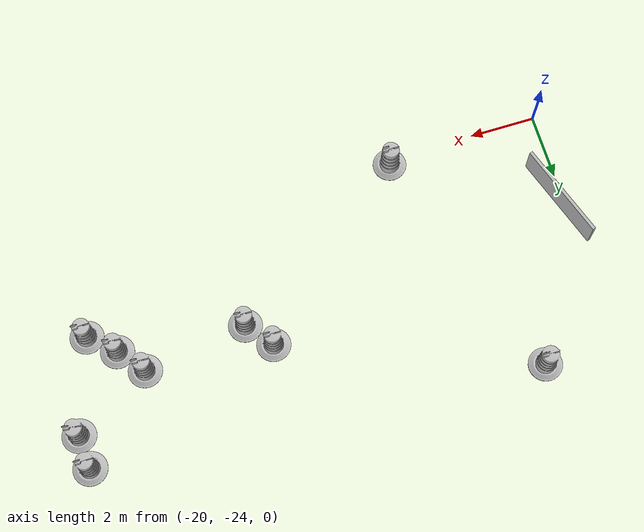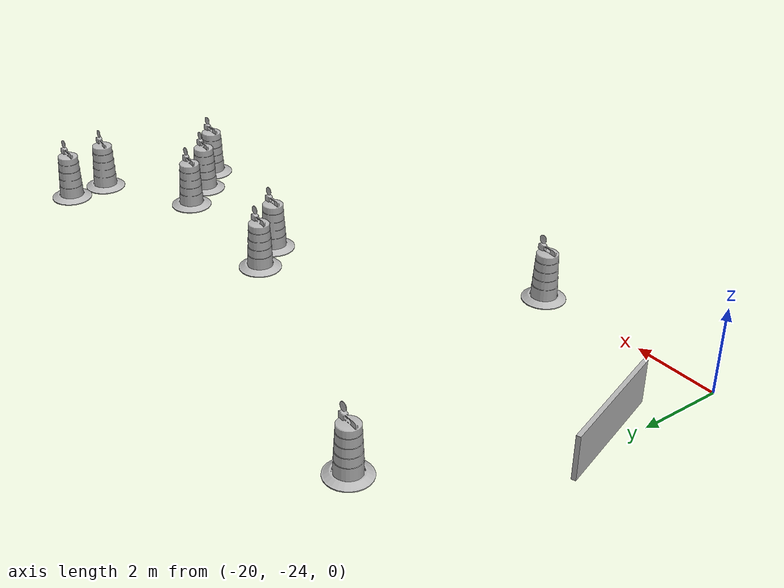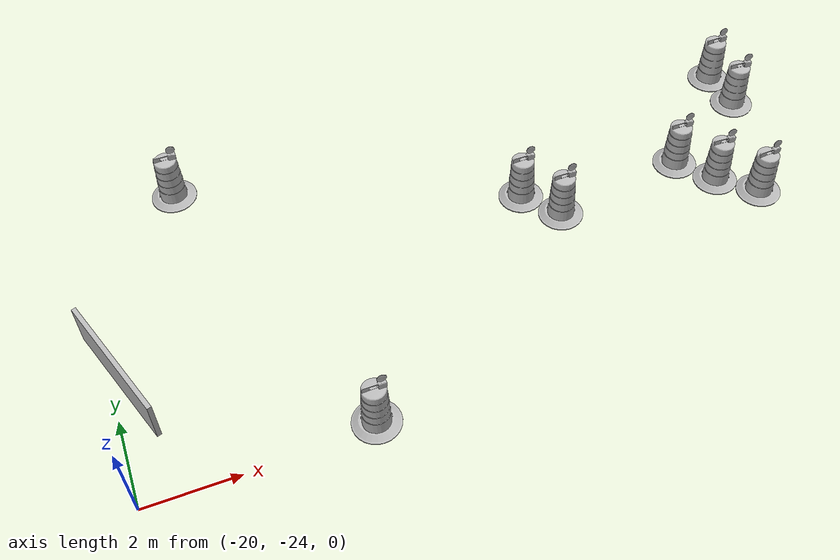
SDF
<sdf version="1.7">
 <world name="default">
  <model name="Construction Barrel_1">
   <link name="link">
    <inertial>
     <pose>0 0 0.4 0 -0 0</pose>
     <mass>500</mass>
     <inertia><ixx>51.2096</ixx><iyy>51.2096</iyy><izz>25</izz><ixy>0</ixy><ixz>0</ixz><iyz>0</iyz></inertia>
    </inertial>
    <collision name="collision">
     <geometry><mesh><uri>model://construction_barrel/meshes/construction_barrel.dae</uri></mesh></geometry>
    </collision>
    <visual name="visual">
     <geometry><mesh><uri>model://construction_barrel/meshes/construction_barrel.dae</uri></mesh></geometry>
    </visual>
    <velocity_decay><linear>0</linear><angular>0</angular></velocity_decay>
   </link>
   <pose>-17.75 -16.5 0 0 0 -0.003004</pose>
   <static>0</static>
  </model>
  <model name="Construction Barrel_2">
   <link name="link">
    <inertial>
     <pose>0 0 0.4 0 -0 0</pose>
     <mass>500</mass>
     <inertia><ixx>51.2096</ixx><iyy>51.2096</iyy><izz>25</izz><ixy>0</ixy><ixz>0</ixz><iyz>0</iyz></inertia>
    </inertial>
    <collision name="collision">
     <geometry><mesh><uri>model://construction_barrel/meshes/construction_barrel.dae</uri></mesh></geometry>
    </collision>
    <visual name="visual">
     <geometry><mesh><uri>model://construction_barrel/meshes/construction_barrel.dae</uri></mesh></geometry>
    </visual>
    <velocity_decay><linear>0</linear><angular>0</angular></velocity_decay>
   </link>
   <pose>-15.3052 -23.817 -2e-06 4e-06 7e-06 -0.002786</pose>
   <static>0</static>
  </model>
  <model name="Construction Barrel_3">
   <link name="link">
    <inertial>
     <pose>0 0 0.4 0 -0 0</pose>
     <mass>500</mass>
     <inertia><ixx>51.2096</ixx><iyy>51.2096</iyy><izz>25</izz><ixy>0</ixy><ixz>0</ixz><iyz>0</iyz></inertia>
    </inertial>
    <collision name="collision">
     <geometry><mesh><uri>model://construction_barrel/meshes/construction_barrel.dae</uri></mesh></geometry>
    </collision>
    <visual name="visual">
     <geometry><mesh><uri>model://construction_barrel/meshes/construction_barrel.dae</uri></mesh></geometry>
    </visual>
    <velocity_decay><linear>0</linear><angular>0</angular></velocity_decay>
   </link>
   <pose>-10.3295 -19.3691 -0 0 -0 -0.002793</pose>
   <static>0</static>
  </model>
  <model name="Construction Barrel_4">
   <link name="link">
    <inertial>
     <pose>0 0 0.4 0 -0 0</pose>
     <mass>500</mass>
     <inertia><ixx>51.2096</ixx><iyy>51.2096</iyy><izz>25</izz><ixy>0</ixy><ixz>0</ixz><iyz>0</iyz></inertia>
    </inertial>
    <collision name="collision">
     <geometry><mesh><uri>model://construction_barrel/meshes/construction_barrel.dae</uri></mesh></geometry>
    </collision>
    <visual name="visual">
     <geometry><mesh><uri>model://construction_barrel/meshes/construction_barrel.dae</uri></mesh></geometry>
    </visual>
    <velocity_decay><linear>0</linear><angular>0</angular></velocity_decay>
   </link>
   <pose>-9.69477 -20.1747 -0 0 0 -0.002819</pose>
   <static>0</static>
  </model>
  <model name="Construction Barrel_5">
   <link name="link">
    <inertial>
     <pose>0 0 0.4 0 -0 0</pose>
     <mass>500</mass>
     <inertia><ixx>51.2096</ixx><iyy>51.2096</iyy><izz>25</izz><ixy>0</ixy><ixz>0</ixz><iyz>0</iyz></inertia>
    </inertial>
    <collision name="collision">
     <geometry><mesh><uri>model://construction_barrel/meshes/construction_barrel.dae</uri></mesh></geometry>
    </collision>
    <visual name="visual">
     <geometry><mesh><uri>model://construction_barrel/meshes/construction_barrel.dae</uri></mesh></geometry>
    </visual>
    <velocity_decay><linear>0</linear><angular>0</angular></velocity_decay>
   </link>
   <pose>-5.89646 -20.493 -0 0 0 -0.051367</pose>
   <static>0</static>
  </model>
  <model name="Construction Barrel_6">
   <link name="link">
    <inertial>
     <pose>0 0 0.4 0 -0 0</pose>
     <mass>500</mass>
     <inertia><ixx>51.2096</ixx><iyy>51.2096</iyy><izz>25</izz><ixy>0</ixy><ixz>0</ixz><iyz>0</iyz></inertia>
    </inertial>
    <collision name="collision">
     <geometry><mesh><uri>model://construction_barrel/meshes/construction_barrel.dae</uri></mesh></geometry>
    </collision>
    <visual name="visual">
     <geometry><mesh><uri>model://construction_barrel/meshes/construction_barrel.dae</uri></mesh></geometry>
    </visual>
    <velocity_decay><linear>0</linear><angular>0</angular></velocity_decay>
   </link>
   <pose>-5.14689 -21.1796 -2e-06 0 7e-06 0.05003</pose>
   <static>0</static>
  </model>
  <model name="Construction Barrel_7">
   <link name="link">
    <inertial>
     <pose>0 0 0.4 0 -0 0</pose>
     <mass>500</mass>
     <inertia><ixx>51.2096</ixx><iyy>51.2096</iyy><izz>25</izz><ixy>0</ixy><ixz>0</ixz><iyz>0</iyz></inertia>
    </inertial>
    <collision name="collision">
     <geometry><mesh><uri>model://construction_barrel/meshes/construction_barrel.dae</uri></mesh></geometry>
    </collision>
    <visual name="visual">
     <geometry><mesh><uri>model://construction_barrel/meshes/construction_barrel.dae</uri></mesh></geometry>
    </visual>
    <velocity_decay><linear>0</linear><angular>0</angular></velocity_decay>
   </link>
   <pose>-6.52862 -19.7003 -0 0 0 -0.03</pose>
   <static>0</static>
  </model>
  <model name="Construction Barrel_8">
   <link name="link">
    <inertial>
     <pose>0 0 0.4 0 -0 0</pose>
     <mass>500</mass>
     <inertia><ixx>51.2096</ixx><iyy>51.2096</iyy><izz>25</izz><ixy>0</ixy><ixz>0</ixz><iyz>0</iyz></inertia>
    </inertial>
    <collision name="collision">
     <geometry><mesh><uri>model://construction_barrel/meshes/construction_barrel.dae</uri></mesh></geometry>
    </collision>
    <visual name="visual">
     <geometry><mesh><uri>model://construction_barrel/meshes/construction_barrel.dae</uri></mesh></geometry>
    </visual>
    <velocity_decay><linear>0</linear><angular>0</angular></velocity_decay>
   </link>
   <pose>-4.30117 -17.3726 -0 0 -0 0.027013</pose>
   <static>0</static>
  </model>
  <model name="Construction Barrel_9">
   <link name="link">
    <inertial>
     <pose>0 0 0.4 0 -0 0</pose>
     <mass>500</mass>
     <inertia><ixx>51.2096</ixx><iyy>51.2096</iyy><izz>25</izz><ixy>0</ixy><ixz>0</ixz><iyz>0</iyz></inertia>
    </inertial>
    <collision name="collision">
     <geometry><mesh><uri>model://construction_barrel/meshes/construction_barrel.dae</uri></mesh></geometry>
    </collision>
    <visual name="visual">
     <geometry><mesh><uri>model://construction_barrel/meshes/construction_barrel.dae</uri></mesh></geometry>
    </visual>
    <velocity_decay><linear>0</linear><angular>0</angular></velocity_decay>
   </link>
   <pose>-4.22766 -18.3874 -2e-06 2e-06 7e-06 -0.096401</pose>
   <static>0</static>
  </model>
  <model name="barricade_3">
   <static>1</static>
   <pose>-19.8 -21.17 0.5 0 -0 1.9</pose>
   <link name="link">
    <collision name="collision"><geometry><box><size>3 0.1 1</size></box></geometry></collision>
    <visual name="visual"><geometry><box><size>3 0.1 1</size></box></geometry></visual>
   </link>
  </model>
 </world>
</sdf>
